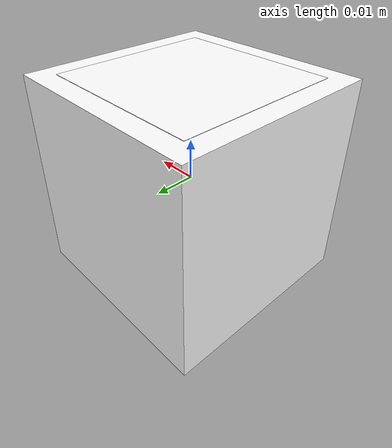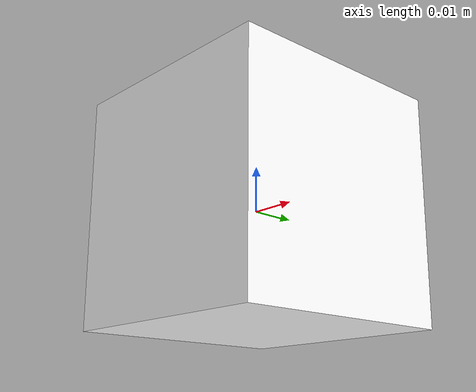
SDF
<?xml version="1.0" ?>
<sdf version='1.9'>
  <model name='aruco_cube'>
    <link name="cube_link">

        <!-- 질량 및 관성 정보 -->
        <inertial>
            <mass>0.05</mass>
            <inertia>
                <ixx>0.00002083</ixx>
                <ixy>0</ixy>
                <ixz>0</ixz>
                <iyy>0.00002083</iyy>
                <iyz>0</iyz>
                <izz>0.00002083</izz>
            </inertia>
        </inertial>

        <collision name="cube_collision">
            <geometry>
                <box>
                    <size>0.05 0.05 0.05</size>
                </box>
            </geometry>
            <!-- 그리핑 시 미끄러짐 방지를 위한 표면 마찰력 -->
            <surface>
                <friction>
                    <ode>
                        <mu>100.0</mu>
                        <mu2>100.0</mu2>
                    </ode>
                </friction>
            </surface>
        </collision>

        <visual name="cube_visual">
            <geometry>
                <box>
                    <size>0.05 0.05 0.05</size>
                </box>
            </geometry>
            <material>
                <ambient>1 1 1 1</ambient>
                <diffuse>1 1 1 1</diffuse>
                <specular>0.1 0.1 0.1 1</specular>
            </material>
        </visual>

        <visual name="aruco_top_visual">
            <pose>0 0 0.0251 0 0 0</pose>
            <geometry>
                <box>
                    <size>0.04 0.04 0.0001</size>
                </box>
            </geometry>
            <material>
                <ambient>1 1 1 1</ambient>
                <diffuse>1 1 1 1</diffuse>
                <pbr>
                    <metal>
                        <!-- 절대 경로 적용 -->
                        <albedo_map>model://aruco_cube/materials/textures/aruco_0.png</albedo_map>
                        <roughness>1.0</roughness>
                        <metalness>0.0</metalness>
                    </metal>
                </pbr>
            </material>
        </visual>

    </link>
  </model>
</sdf>
